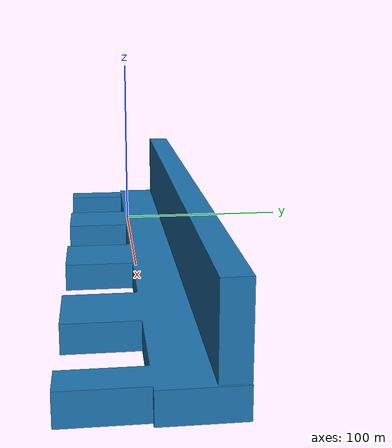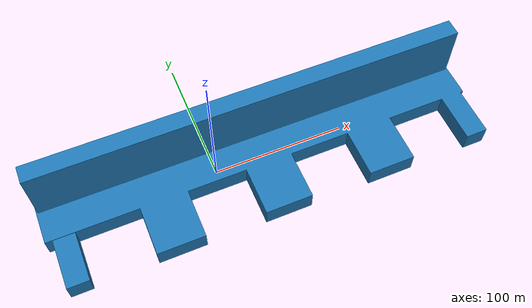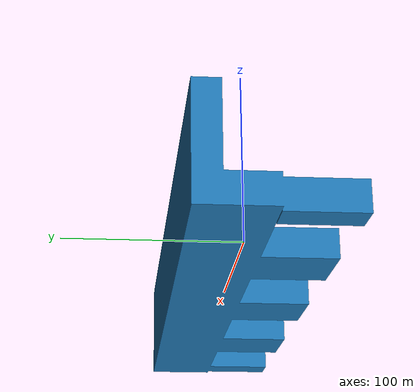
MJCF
<mujoco model="cube_base">
  <default>
    <default class="visual">
      <geom group="2" type="mesh" contype="0" conaffinity="0"/>
    </default>
    <default class="collision">
      <geom group="3" type="mesh"/>
    </default>
  </default>
  <asset>
    <material name="Material000" specular="0.5" shininess="0.5" rgba="0.121569 0.466667 0.705882 1.0"/>
    <mesh file="cube_base.obj"/>
    <mesh file="cube_base_collision_0.obj"/>
    <mesh file="cube_base_collision_1.obj"/>
    <mesh file="cube_base_collision_2.obj"/>
    <mesh file="cube_base_collision_3.obj"/>
    <mesh file="cube_base_collision_4.obj"/>
    <mesh file="cube_base_collision_5.obj"/>
    <mesh file="cube_base_collision_6.obj"/>
  </asset>
  <worldbody>
    <body name="cube_base">
      <geom material="Material000" mesh="cube_base" class="visual"/>
      <geom mesh="cube_base_collision_0" class="collision"/>
      <geom mesh="cube_base_collision_1" class="collision"/>
      <geom mesh="cube_base_collision_2" class="collision"/>
      <geom mesh="cube_base_collision_3" class="collision"/>
      <geom mesh="cube_base_collision_4" class="collision"/>
      <geom mesh="cube_base_collision_5" class="collision"/>
      <geom mesh="cube_base_collision_6" class="collision"/>
    </body>
  </worldbody>
</mujoco>
